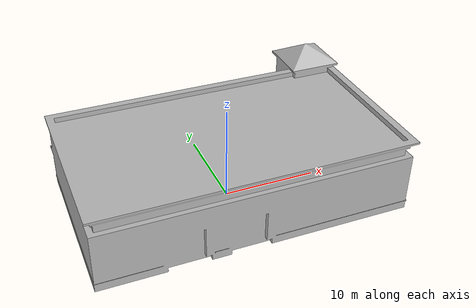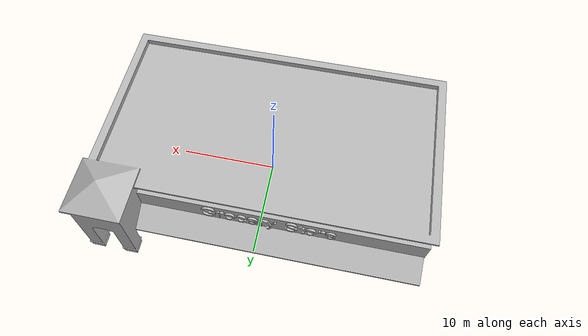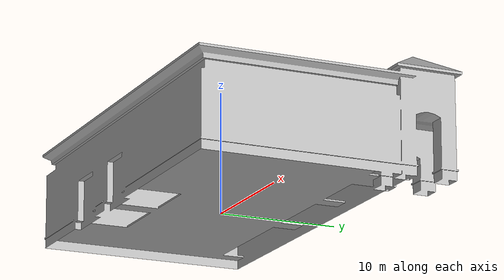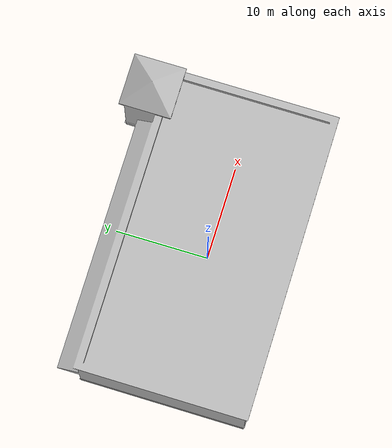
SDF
<?xml version="1.0" ?>
<sdf version="1.6">
  <model name="grocery_store">
    <static>true</static>
    <link name="link">
      <collision name="collision">
        <pose>0 0 4.046044867 0 0 0</pose>
        <geometry>
          <box>
            <size>32.198468496 17.542547846 8.092089734</size>
          </box>
        </geometry>
      </collision>
      <visual name="visual">
        <pose>0 -1.961551703 0 0 0 0</pose>
        <geometry>
          <mesh>
            <uri>model://grocery_store/meshes/grocery_store.dae</uri>
          </mesh>
        </geometry>
      </visual>
    </link>
  </model>
</sdf>
